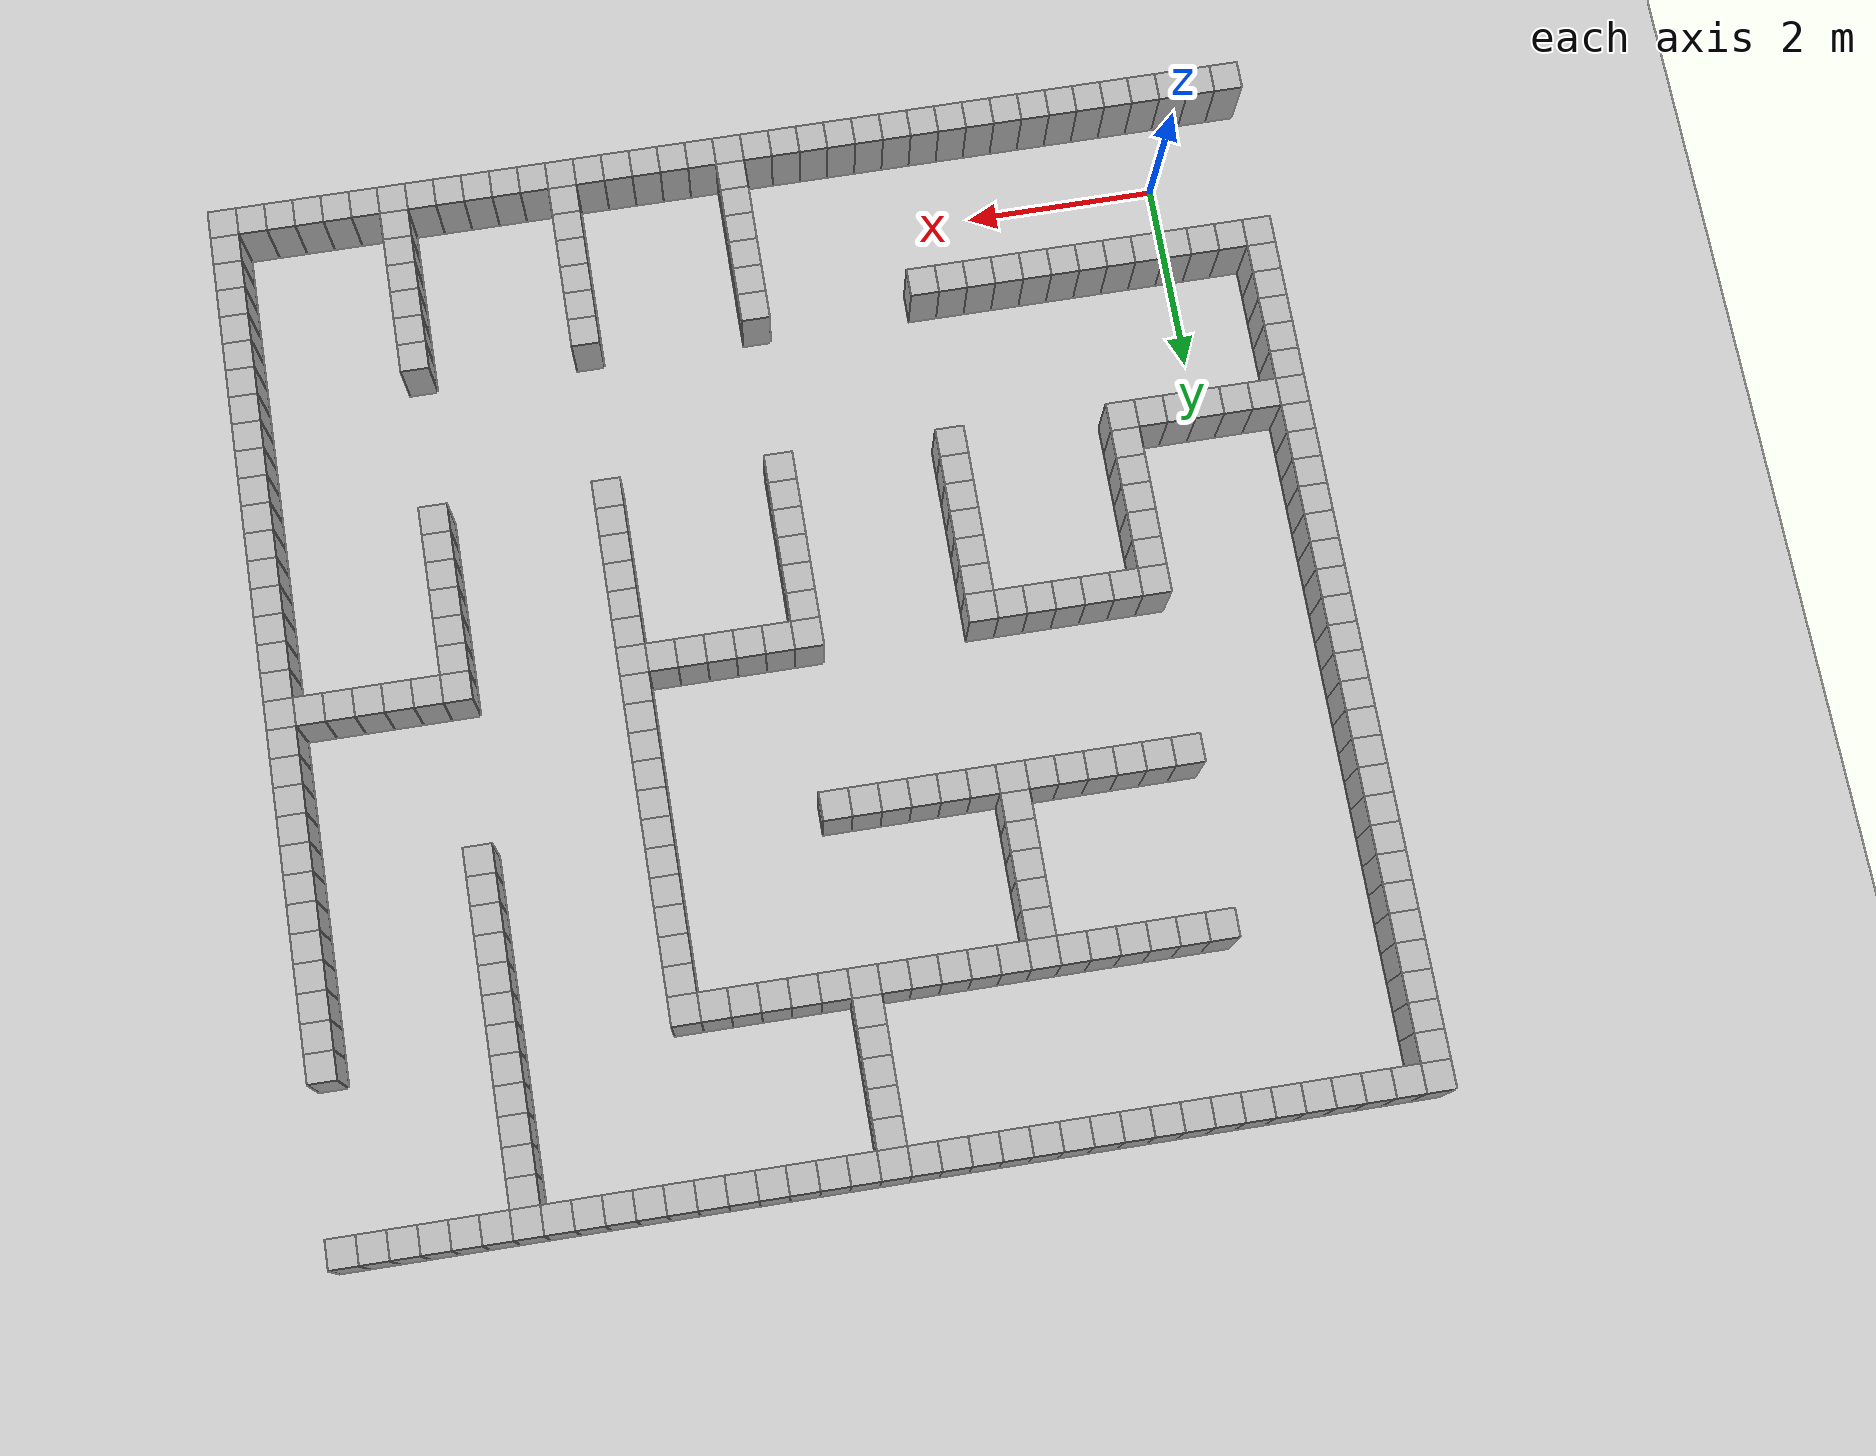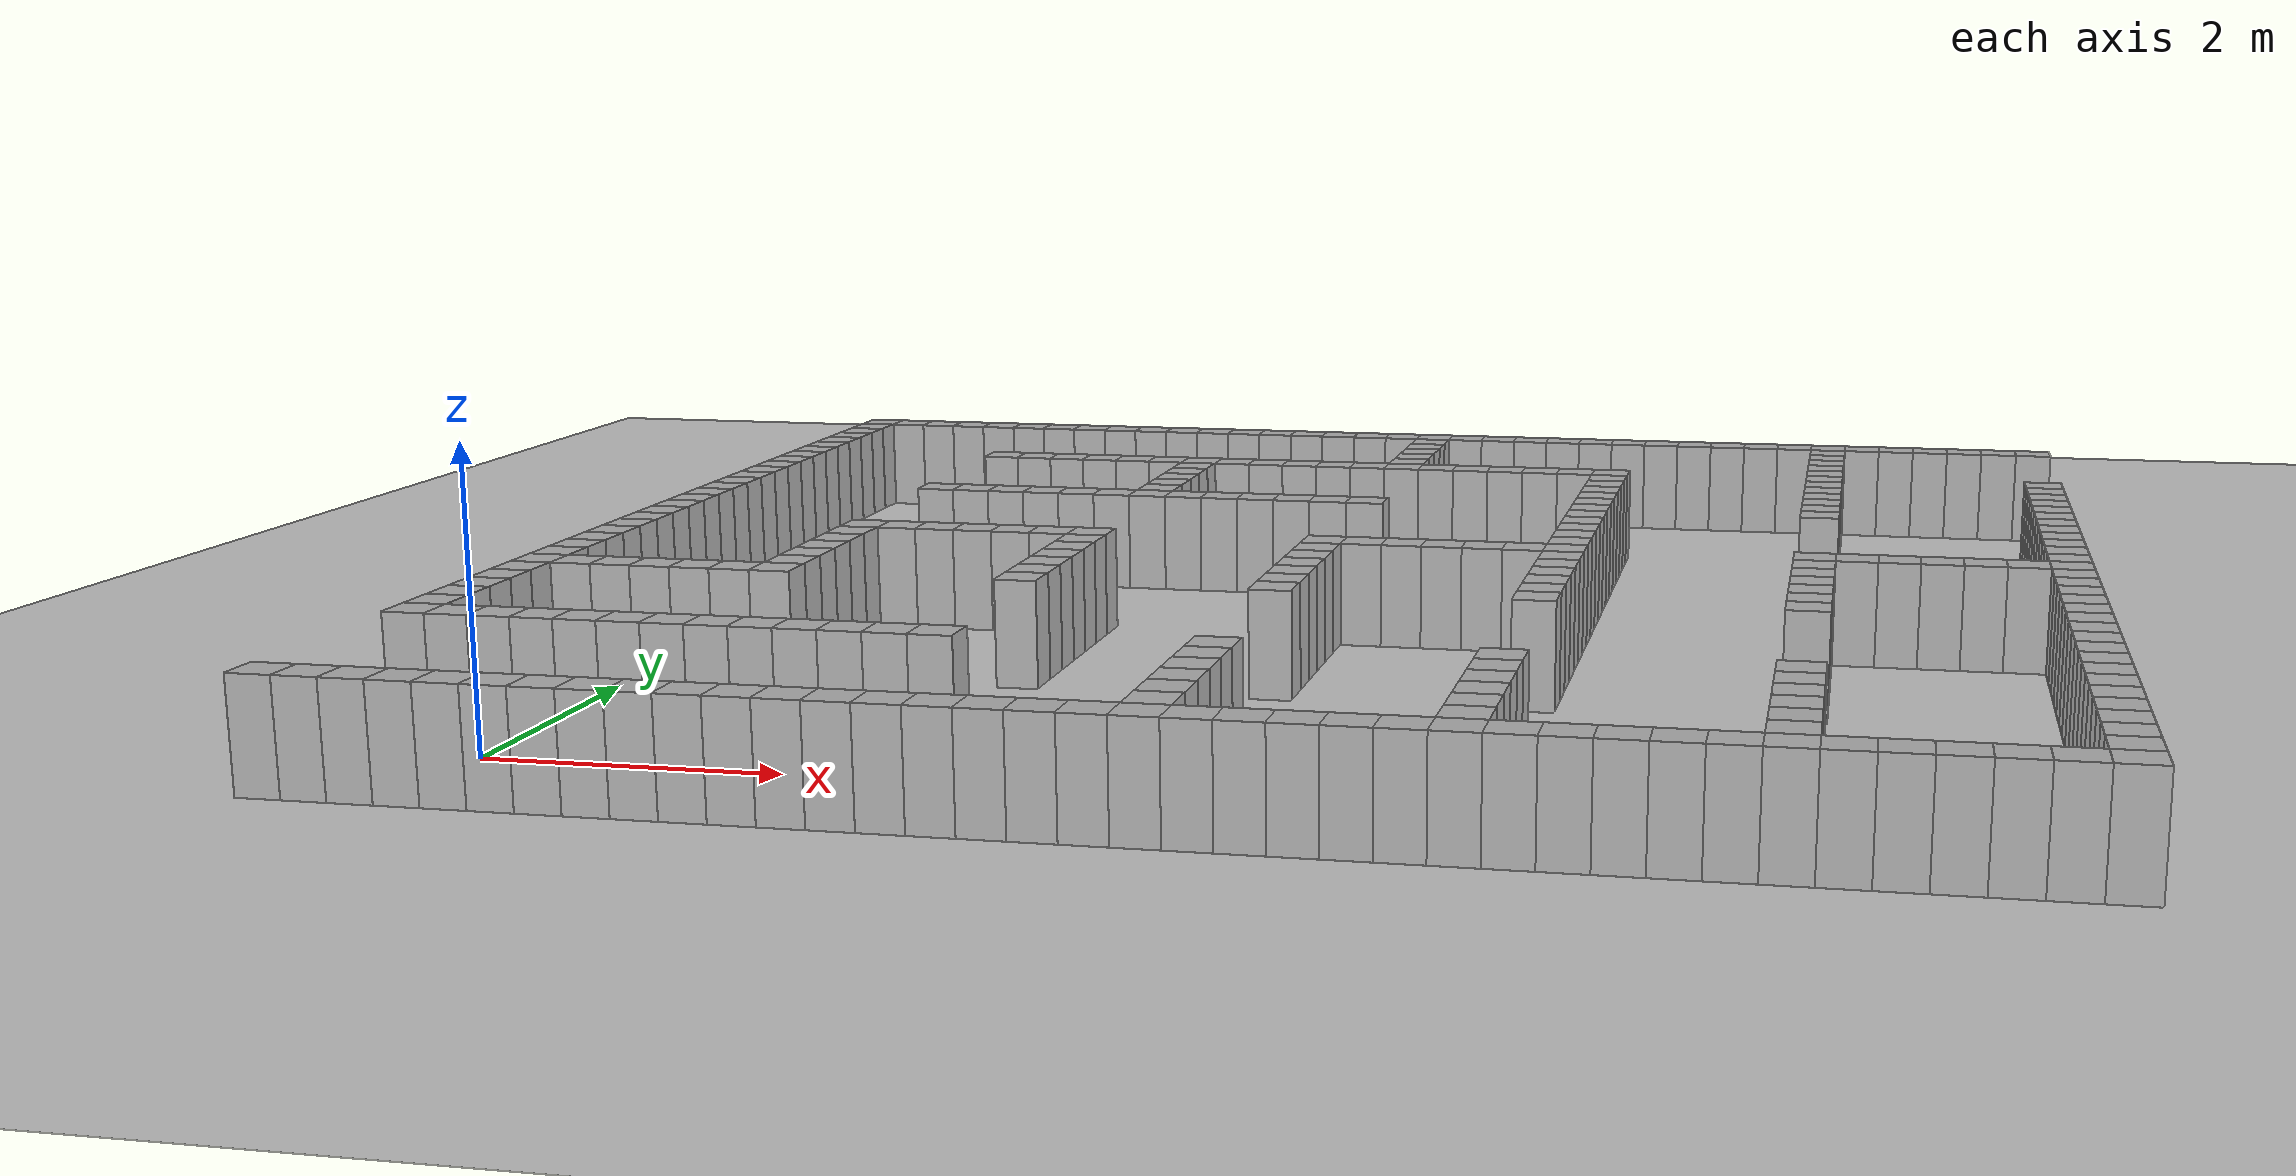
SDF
<sdf version="1.6">
    <world name="default">
      <include>
        <uri>model://sun</uri>
      </include>
      <include>
        <uri>model://ground_plane</uri>
      </include>
      <include>
        <uri>model://mymaze</uri>
      </include>
    </world>
  </sdf>
